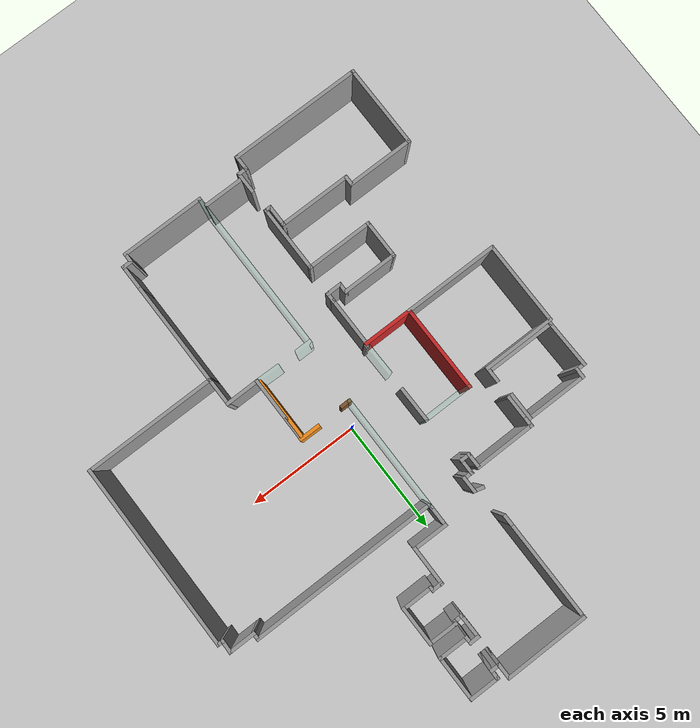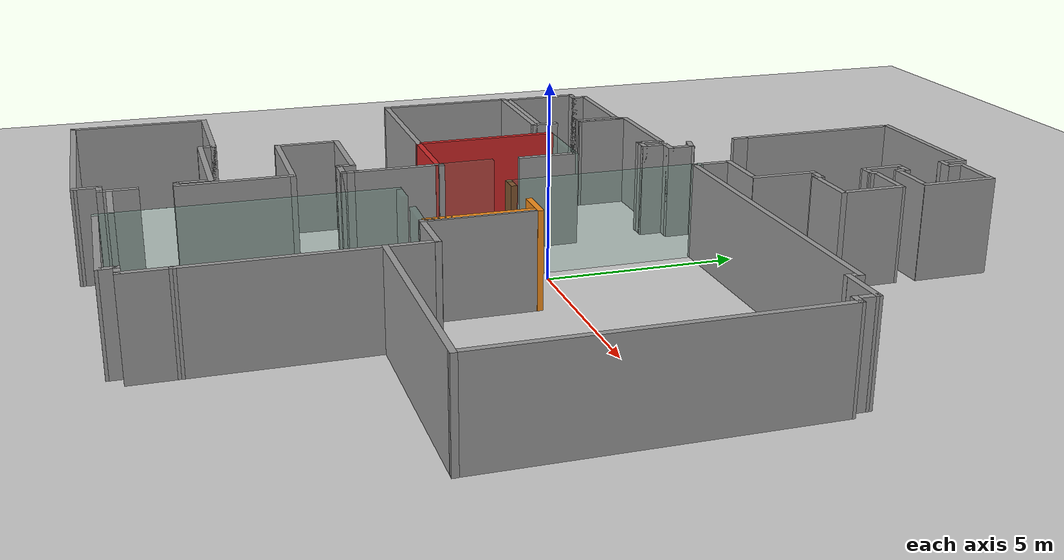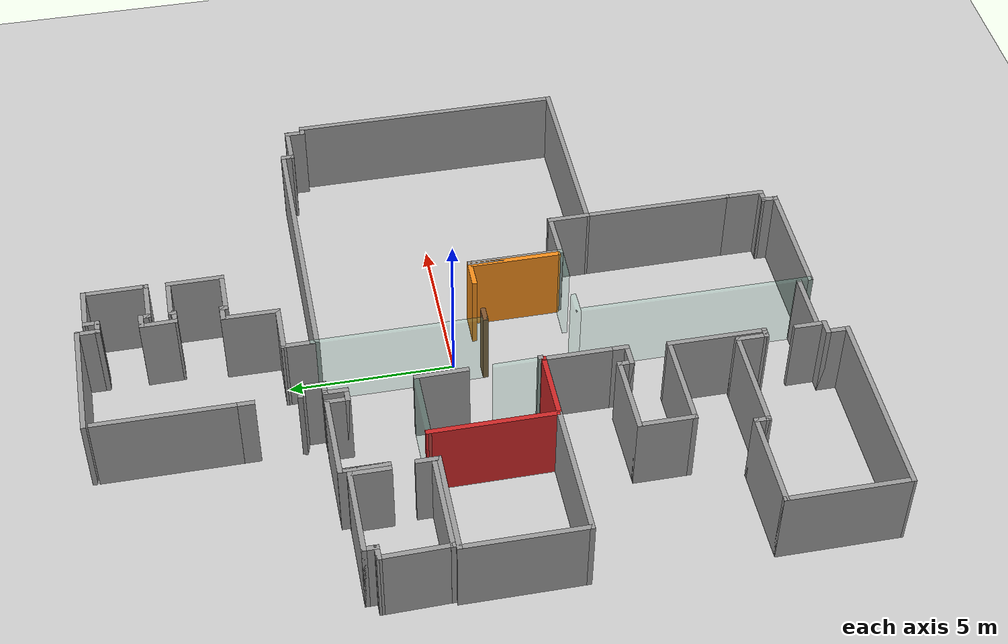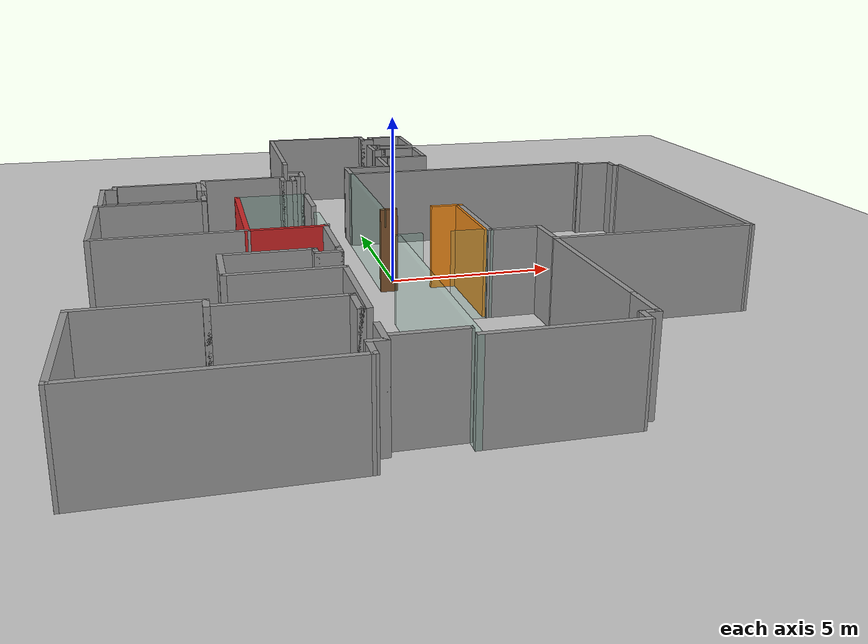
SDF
<sdf version="1.6">
 <world name="default">
  <model name="ground_plane">
   <static>1</static>
   <link name="link">
    <collision name="collision">
     <geometry><plane><normal>0 0 1</normal><size>100 100</size></plane></geometry>
     <surface><friction><ode><mu>100</mu><mu2>50</mu2></ode></friction></surface>
    </collision>
    <visual name="visual">
     <cast_shadows>0</cast_shadows>
     <geometry><plane><normal>0 0 1</normal><size>100 100</size></plane></geometry>
     <material>
      <script><uri>file://media/materials/scripts/gazebo.material</uri><name>Gazebo/Grey</name></script>
     </material>
    </visual>
   </link>
  </model>
  <model name="SS_office_try_2">
   <pose>0.153592 -0.122335 0 0 -0 0</pose>
   <link name="Wall_0">
    <collision name="Wall_0_Collision">
     <geometry><box><size>5.91251 0.15 2.5</size></box></geometry>
     <pose>0 0 1.25 0 -0 0</pose>
    </collision>
    <visual name="Wall_0_Visual">
     <pose>0 0 1.25 0 -0 0</pose>
     <geometry><box><size>5.91251 0.15 2.5</size></box></geometry>
     <material>
      <script><uri>file://media/materials/scripts/gazebo.material</uri><name>Gazebo/Grey</name></script>
      <ambient>1 1 1 1</ambient>
     </material>
     <meta><layer>0</layer></meta>
    </visual>
    <pose>-5.91425 -11.0474 0 0 -0 3.13893</pose>
   </link>
   <link name="Wall_1">
    <collision name="Wall_1_Collision">
     <geometry><box><size>3.75 0.15 2.5</size></box></geometry>
     <pose>0 0 1.25 0 -0 0</pose>
    </collision>
    <visual name="Wall_1_Visual">
     <pose>0 0 1.25 0 -0 0</pose>
     <geometry><box><size>3.75 0.15 2.5</size></box></geometry>
     <material>
      <script><uri>file://media/materials/scripts/gazebo.material</uri><name>Gazebo/Grey</name></script>
      <ambient>1 1 1 1</ambient>
     </material>
     <meta><layer>0</layer></meta>
    </visual>
    <pose>-8.79549 -9.23977 0 0 -0 1.5708</pose>
   </link>
   <link name="Wall_10">
    <collision name="Wall_10_Collision">
     <geometry><box><size>1.75 0.15 2.5</size></box></geometry>
     <pose>0 0 1.25 0 -0 0</pose>
    </collision>
    <visual name="Wall_10_Visual">
     <pose>0 0 1.25 0 -0 0</pose>
     <geometry><box><size>1.75 0.15 2.5</size></box></geometry>
     <material>
      <script><uri>file://media/materials/scripts/gazebo.material</uri><name>Gazebo/Grey</name></script>
      <ambient>1 1 1 1</ambient>
     </material>
     <meta><layer>0</layer></meta>
    </visual>
    <pose>-5.49549 -4.98977 0 0 -0 1.5708</pose>
   </link>
   <link name="Wall_100">
    <collision name="Wall_100_Collision">
     <geometry><box><size>0.379823 0.15 2.5</size></box></geometry>
     <pose>0 0 1.25 0 -0 0</pose>
    </collision>
    <visual name="Wall_100_Visual">
     <pose>0 0 1.25 0 -0 0</pose>
     <geometry><box><size>0.379823 0.15 2.5</size></box></geometry>
     <material>
      <script><uri>file://media/materials/scripts/gazebo.material</uri><name>Gazebo/Grey</name></script>
      <ambient>1 1 1 1</ambient>
     </material>
     <meta><layer>0</layer></meta>
    </visual>
    <pose>1.28072 9.07016 0 0 -0 1.63617</pose>
   </link>
   <link name="Wall_101">
    <collision name="Wall_101_Collision">
     <geometry><box><size>0.5 0.15 2.5</size></box></geometry>
     <pose>0 0 1.25 0 -0 0</pose>
    </collision>
    <visual name="Wall_101_Visual">
     <pose>0 0 1.25 0 -0 0</pose>
     <geometry><box><size>0.5 0.15 2.5</size></box></geometry>
     <material>
      <script><uri>file://media/materials/scripts/gazebo.material</uri><name>Gazebo/Grey</name></script>
      <ambient>1 1 1 1</ambient>
     </material>
     <meta><layer>0</layer></meta>
    </visual>
    <pose>1.10572 9.18501 0 0 -0 3.14159</pose>
   </link>
   <link name="Wall_102">
    <collision name="Wall_102_Collision">
     <geometry><box><size>1.12973 0.15 2.5</size></box></geometry>
     <pose>0 0 1.25 0 -0 0</pose>
    </collision>
    <visual name="Wall_102_Visual">
     <pose>0 0 1.25 0 -0 0</pose>
     <geometry><box><size>1.12973 0.15 2.5</size></box></geometry>
     <material>
      <script><uri>file://media/materials/scripts/gazebo.material</uri><name>Gazebo/Grey</name></script>
      <ambient>1 1 1 1</ambient>
     </material>
     <meta><layer>0</layer></meta>
    </visual>
    <pose>0.930715 8.69516 0 0 0 -1.55545</pose>
   </link>
   <link name="Wall_103">
    <collision name="Wall_103_Collision">
     <geometry><box><size>0.5 0.15 2.5</size></box></geometry>
     <pose>0 0 1.25 0 -0 0</pose>
    </collision>
    <visual name="Wall_103_Visual">
     <pose>0 0 1.25 0 -0 0</pose>
     <geometry><box><size>0.5 0.15 2.5</size></box></geometry>
     <material>
      <script><uri>file://media/materials/scripts/gazebo.material</uri><name>Gazebo/Grey</name></script>
      <ambient>1 1 1 1</ambient>
     </material>
     <meta><layer>0</layer></meta>
    </visual>
    <pose>1.11323 8.20531 0 0 -0 0</pose>
   </link>
   <link name="Wall_104">
    <collision name="Wall_104_Collision">
     <geometry><box><size>0.25 0.15 2.5</size></box></geometry>
     <pose>0 0 1.25 0 -0 0</pose>
    </collision>
    <visual name="Wall_104_Visual">
     <pose>0 0 1.25 0 -0 0</pose>
     <geometry><box><size>0.25 0.15 2.5</size></box></geometry>
     <material>
      <script><uri>file://media/materials/scripts/gazebo.material</uri><name>Gazebo/Grey</name></script>
      <ambient>1 1 1 1</ambient>
     </material>
     <meta><layer>0</layer></meta>
    </visual>
    <pose>1.28823 8.25531 0 0 -0 1.5708</pose>
   </link>
   <link name="Wall_105">
    <collision name="Wall_105_Collision">
     <geometry><box><size>1.3554 0.15 2.5</size></box></geometry>
     <pose>0 0 1.25 0 -0 0</pose>
    </collision>
    <visual name="Wall_105_Visual">
     <pose>0 0 1.25 0 -0 0</pose>
     <geometry><box><size>1.3554 0.15 2.5</size></box></geometry>
     <material>
      <script><uri>file://media/materials/scripts/gazebo.material</uri><name>Gazebo/Grey</name></script>
      <ambient>1 1 1 1</ambient>
     </material>
     <meta><layer>0</layer></meta>
    </visual>
    <pose>1.89089 8.29779 0 0 0 -0.012475</pose>
   </link>
   <link name="Wall_106">
    <collision name="Wall_106_Collision">
     <geometry><box><size>1.75 0.15 2.5</size></box></geometry>
     <pose>0 0 1.25 0 -0 0</pose>
    </collision>
    <visual name="Wall_106_Visual">
     <pose>0 0 1.25 0 -0 0</pose>
     <geometry><box><size>1.75 0.15 2.5</size></box></geometry>
     <material>
      <script><uri>file://media/materials/scripts/gazebo.material</uri><name>Gazebo/Grey</name></script>
      <ambient>1 1 1 1</ambient>
     </material>
     <meta><layer>0</layer></meta>
    </visual>
    <pose>2.49354 7.49027 0 0 0 -1.5708</pose>
   </link>
   <link name="Wall_107">
    <collision name="Wall_107_Collision">
     <geometry><box><size>1.45874 0.15 2.5</size></box></geometry>
     <pose>0 0 1.25 0 -0 0</pose>
    </collision>
    <visual name="Wall_107_Visual">
     <pose>0 0 1.25 0 -0 0</pose>
     <geometry><box><size>1.45874 0.15 2.5</size></box></geometry>
     <material>
      <script><uri>file://media/materials/scripts/gazebo.material</uri><name>Gazebo/Grey</name></script>
      <ambient>1 1 1 1</ambient>
     </material>
     <meta><layer>0</layer></meta>
    </visual>
    <pose>1.84486 6.69027 0 0 -0 3.14159</pose>
   </link>
   <link name="Wall_108">
    <collision name="Wall_108_Collision">
     <geometry><box><size>0.266919 0.15 2.5</size></box></geometry>
     <pose>0 0 1.25 0 -0 0</pose>
    </collision>
    <visual name="Wall_108_Visual">
     <pose>0 0 1.25 0 -0 0</pose>
     <geometry><box><size>0.266919 0.15 2.5</size></box></geometry>
     <material>
      <script><uri>file://media/materials/scripts/gazebo.material</uri><name>Gazebo/Grey</name></script>
      <ambient>1 1 1 1</ambient>
     </material>
     <meta><layer>0</layer></meta>
    </visual>
    <pose>1.19801 6.75625 0 0 -0 1.5708</pose>
   </link>
   <link name="Wall_109">
    <collision name="Wall_109_Collision">
     <geometry><box><size>0.552631 0.15 2.5</size></box></geometry>
     <pose>0 0 1.25 0 -0 0</pose>
    </collision>
    <visual name="Wall_109_Visual">
     <pose>0 0 1.25 0 -0 0</pose>
     <geometry><box><size>0.552631 0.15 2.5</size></box></geometry>
     <material>
      <script><uri>file://media/materials/scripts/gazebo.material</uri><name>Gazebo/Grey</name></script>
      <ambient>1 1 1 1</ambient>
     </material>
     <meta><layer>0</layer></meta>
    </visual>
    <pose>1.00421 6.80719 0 0 -0 3.14159</pose>
   </link>
   <link name="Wall_11">
    <collision name="Wall_11_Collision">
     <geometry><box><size>2.5 0.15 2.5</size></box></geometry>
     <pose>0 0 1.25 0 -0 0</pose>
    </collision>
    <visual name="Wall_11_Visual">
     <pose>0 0 1.25 0 -0 0</pose>
     <geometry><box><size>2.5 0.15 2.5</size></box></geometry>
     <material>
      <script><uri>file://media/materials/scripts/gazebo.material</uri><name>Gazebo/Grey</name></script>
      <ambient>1 1 1 1</ambient>
     </material>
     <meta><layer>0</layer></meta>
    </visual>
    <pose>-4.32049 -4.18977 0 0 -0 0</pose>
   </link>
   <link name="Wall_110">
    <collision name="Wall_110_Collision">
     <geometry><box><size>1.75942 0.15 2.5</size></box></geometry>
     <pose>0 0 1.25 0 -0 0</pose>
    </collision>
    <visual name="Wall_110_Visual">
     <pose>0 0 1.25 0 -0 0</pose>
     <geometry><box><size>1.75942 0.15 2.5</size></box></geometry>
     <material>
      <script><uri>file://media/materials/scripts/gazebo.material</uri><name>Gazebo/Grey</name></script>
      <ambient>1 1 1 1</ambient>
     </material>
     <meta><layer>0</layer></meta>
    </visual>
    <pose>0.791618 6.01001 0 0 0 -1.57547</pose>
   </link>
   <link name="Wall_111">
    <collision name="Wall_111_Collision">
     <geometry><box><size>1.59211 0.15 2.5</size></box></geometry>
     <pose>0 0 1.25 0 -0 0</pose>
    </collision>
    <visual name="Wall_111_Visual">
     <pose>0 0 1.25 0 -0 0</pose>
     <geometry><box><size>1.59211 0.15 2.5</size></box></geometry>
     <material>
      <script><uri>file://media/materials/scripts/gazebo.material</uri><name>Gazebo/Grey</name></script>
      <ambient>1 1 1 1</ambient>
     </material>
     <meta><layer>0</layer></meta>
    </visual>
    <pose>0.059287 5.20155 0 0 -0 3.13638</pose>
   </link>
   <link name="Wall_113">
    <collision name="Wall_113_Collision">
     <geometry><box><size>1 0.15 2.5</size></box></geometry>
     <pose>0 0 1.25 0 -0 0</pose>
    </collision>
    <visual name="Wall_113_Visual">
     <pose>0 0 1.25 0 -0 0</pose>
     <geometry><box><size>1 0.15 2.5</size></box></geometry>
     <material>
      <script><uri>file://media/materials/scripts/gazebo.material</uri><name>Gazebo/Grey</name></script>
      <ambient>1 1 1 1</ambient>
     </material>
     <meta><layer>0</layer></meta>
    </visual>
    <pose>-0.661766 4.78031 0 0 0 -1.5708</pose>
   </link>
   <link name="Wall_115">
    <collision name="Wall_115_Collision">
     <geometry><box><size>5.25 0.15 2.5</size></box></geometry>
     <pose>0 0 1.25 0 -0 0</pose>
    </collision>
    <visual name="Wall_115_Visual">
     <pose>0 0 1.25 0 -0 0</pose>
     <geometry><box><size>5.25 0.15 2.5</size></box></geometry>
     <material>
      <script><uri>file://media/materials/scripts/gazebo.material</uri><name>Gazebo/Grey</name></script>
      <ambient>0.435 0.796 0.675 1</ambient>
      <diffuse>0.7 0.7 0.7 1</diffuse>
      <specular>0.01 0.01 0.01 1</specular>
      <emissive>0 0 0 1</emissive>
     </material>
     <meta><layer>0</layer></meta>
     <transparency>0.8</transparency>
    </visual>
    <pose>-0.661766 1.80531 0 0 0 -1.5708</pose>
   </link>
   <link name="Wall_116">
    <collision name="Wall_116_Collision">
     <geometry><box><size>0.5 0.15 2.5</size></box></geometry>
     <pose>0 0 1.25 0 -0 0</pose>
    </collision>
    <visual name="Wall_116_Visual">
     <pose>0 0 1.25 0 -0 0</pose>
     <geometry><box><size>0.5 0.15 2.5</size></box></geometry>
     <material>
      <script><uri>file://media/materials/scripts/gazebo.material</uri><name>Gazebo/Brown</name></script>
      <ambient>1 1 1 1</ambient>
     </material>
     <meta><layer>0</layer></meta>
    </visual>
    <pose>-0.486766 -0.744691 0 0 -0 0</pose>
   </link>
   <link name="Wall_118">
    <collision name="Wall_118_Collision">
     <geometry><box><size>0.961189 0.15 2.5</size></box></geometry>
     <pose>0 0 1.25 0 -0 0</pose>
    </collision>
    <visual name="Wall_118_Visual">
     <pose>0 0 1.25 0 -0 0</pose>
     <geometry><box><size>0.961189 0.15 2.5</size></box></geometry>
     <material>
      <script><uri>file://media/materials/scripts/gazebo.material</uri><name>Gazebo/Orange</name></script>
      <ambient>1 1 1 1</ambient>
     </material>
     <meta><layer>0</layer></meta>
    </visual>
    <pose>1.28357 -0.707118 0 0 0 -0.008354</pose>
   </link>
   <link name="Wall_119">
    <collision name="Wall_119_Collision">
     <geometry><box><size>2.92618 0.15 2.5</size></box></geometry>
     <pose>0 0 1.25 0 -0 0</pose>
    </collision>
    <visual name="Wall_119_Visual">
     <pose>0 0 1.25 0 -0 0</pose>
     <geometry><box><size>2.92618 0.15 2.5</size></box></geometry>
     <material>
      <script><uri>file://media/materials/scripts/gazebo.material</uri><name>Gazebo/Grey</name></script>
      <ambient>1 1 1 1</ambient>
     </material>
     <meta><layer>0</layer></meta>
    </visual>
    <pose>1.68237 -2.11215 0 0 0 -1.5708</pose>
   </link>
   <link name="Wall_12">
    <collision name="Wall_12_Collision">
     <geometry><box><size>0.5 0.15 2.5</size></box></geometry>
     <pose>0 0 1.25 0 -0 0</pose>
    </collision>
    <visual name="Wall_12_Visual">
     <pose>0 0 1.25 0 -0 0</pose>
     <geometry><box><size>0.5 0.15 2.5</size></box></geometry>
     <material>
      <script><uri>file://media/materials/scripts/gazebo.material</uri><name>Gazebo/Grey</name></script>
      <ambient>1 1 1 1</ambient>
     </material>
     <meta><layer>0</layer></meta>
    </visual>
    <pose>-3.14549 -4.36477 0 0 0 -1.5708</pose>
   </link>
   <link name="Wall_120">
    <collision name="Wall_120_Collision">
     <geometry><box><size>1.55423 0.15 2.5</size></box></geometry>
     <pose>0 0 1.25 0 -0 0</pose>
    </collision>
    <visual name="Wall_120_Visual">
     <pose>0 0 1.25 0 -0 0</pose>
     <geometry><box><size>1.55423 0.15 2.5</size></box></geometry>
     <material>
      <script><uri>file://media/materials/scripts/gazebo.material</uri><name>Gazebo/Grey</name></script>
      <ambient>1 1 1 1</ambient>
     </material>
     <meta><layer>0</layer></meta>
    </visual>
    <pose>2.39125 -3.50363 0 0 -0 0.004826</pose>
   </link>
   <link name="Wall_121">
    <collision name="Wall_121_Collision">
     <geometry><box><size>1.31028 0.15 2.5</size></box></geometry>
     <pose>0 0 1.25 0 -0 0</pose>
    </collision>
    <visual name="Wall_121_Visual">
     <pose>0 0 1.25 0 -0 0</pose>
     <geometry><box><size>1.31028 0.15 2.5</size></box></geometry>
     <material>
      <script><uri>file://media/materials/scripts/gazebo.material</uri><name>Gazebo/Grey</name></script>
      <ambient>1 1 1 1</ambient>
     </material>
     <meta><layer>0</layer></meta>
    </visual>
    <pose>3.08997 -4.0736 0 0 0 -1.56496</pose>
   </link>
   <link name="Wall_122">
    <collision name="Wall_122_Collision">
     <geometry><box><size>5.85233 0.15 2.5</size></box></geometry>
     <pose>0 0 1.25 0 -0 0</pose>
    </collision>
    <visual name="Wall_122_Visual">
     <pose>0 0 1.25 0 -0 0</pose>
     <geometry><box><size>5.85233 0.15 2.5</size></box></geometry>
     <material>
      <script><uri>file://media/materials/scripts/gazebo.material</uri><name>Gazebo/Grey</name></script>
      <ambient>1 1 1 1</ambient>
     </material>
     <meta><layer>0</layer></meta>
    </visual>
    <pose>5.94452 -4.65373 0 0 -0 0</pose>
   </link>
   <link name="Wall_123">
    <collision name="Wall_123_Collision">
     <geometry><box><size>8.28775 0.15 2.5</size></box></geometry>
     <pose>0 0 1.25 0 -0 0</pose>
    </collision>
    <visual name="Wall_123_Visual">
     <pose>0 0 1.25 0 -0 0</pose>
     <geometry><box><size>8.28775 0.15 2.5</size></box></geometry>
     <material>
      <script><uri>file://media/materials/scripts/gazebo.material</uri><name>Gazebo/Grey</name></script>
      <ambient>1 1 1 1</ambient>
     </material>
     <meta><layer>0</layer></meta>
    </visual>
    <pose>8.78622 -0.584854 0 0 -0 1.57126</pose>
   </link>
   <link name="Wall_124">
    <collision name="Wall_124_Collision">
     <geometry><box><size>0.352219 0.15 2.5</size></box></geometry>
     <pose>0 0 1.25 0 -0 0</pose>
    </collision>
    <visual name="Wall_124_Visual">
     <pose>0 0 1.25 0 -0 0</pose>
     <geometry><box><size>0.352219 0.15 2.5</size></box></geometry>
     <material>
      <script><uri>file://media/materials/scripts/gazebo.material</uri><name>Gazebo/Grey</name></script>
      <ambient>1 1 1 1</ambient>
     </material>
     <meta><layer>0</layer></meta>
    </visual>
    <pose>8.68323 3.48971 0 0 -0 3.12285</pose>
   </link>
   <link name="Wall_125">
    <collision name="Wall_125_Collision">
     <geometry><box><size>0.636677 0.15 2.5</size></box></geometry>
     <pose>0 0 1.25 0 -0 0</pose>
    </collision>
    <visual name="Wall_125_Visual">
     <pose>0 0 1.25 0 -0 0</pose>
     <geometry><box><size>0.636677 0.15 2.5</size></box></geometry>
     <material>
      <script><uri>file://media/materials/scripts/gazebo.material</uri><name>Gazebo/Grey</name></script>
      <ambient>1 1 1 1</ambient>
     </material>
     <meta><layer>0</layer></meta>
    </visual>
    <pose>8.58585 3.73103 0 0 -0 1.53995</pose>
   </link>
   <link name="Wall_126">
    <collision name="Wall_126_Collision">
     <geometry><box><size>1.25 0.15 2.5</size></box></geometry>
     <pose>0 0 1.25 0 -0 0</pose>
    </collision>
    <visual name="Wall_126_Visual">
     <pose>0 0 1.25 0 -0 0</pose>
     <geometry><box><size>1.25 0.15 2.5</size></box></geometry>
     <material>
      <script><uri>file://media/materials/scripts/gazebo.material</uri><name>Gazebo/Grey</name></script>
      <ambient>1 1 1 1</ambient>
     </material>
     <meta><layer>0</layer></meta>
    </visual>
    <pose>8.04336 3.97426 0 0 -0 3.14159</pose>
   </link>
   <link name="Wall_127">
    <collision name="Wall_127_Collision">
     <geometry><box><size>0.411283 0.15 2.5</size></box></geometry>
     <pose>0 0 1.25 0 -0 0</pose>
    </collision>
    <visual name="Wall_127_Visual">
     <pose>0 0 1.25 0 -0 0</pose>
     <geometry><box><size>0.411283 0.15 2.5</size></box></geometry>
     <material>
      <script><uri>file://media/materials/scripts/gazebo.material</uri><name>Gazebo/Grey</name></script>
      <ambient>1 1 1 1</ambient>
     </material>
     <meta><layer>0</layer></meta>
    </visual>
    <pose>7.49234 4.1011 0 0 -0 1.57861</pose>
   </link>
   <link name="Wall_128">
    <collision name="Wall_128_Collision">
     <geometry><box><size>8.25 0.15 2.5</size></box></geometry>
     <pose>0 0 1.25 0 -0 0</pose>
    </collision>
    <visual name="Wall_128_Visual">
     <pose>0 0 1.25 0 -0 0</pose>
     <geometry><box><size>8.25 0.15 2.5</size></box></geometry>
     <material>
      <script><uri>file://media/materials/scripts/gazebo.material</uri><name>Gazebo/Grey</name></script>
      <ambient>1 1 1 1</ambient>
     </material>
     <meta><layer>0</layer></meta>
    </visual>
    <pose>3.43753 4.23174 0 0 -0 3.14159</pose>
   </link>
   <link name="Wall_13">
    <collision name="Wall_13_Collision">
     <geometry><box><size>0.75 0.15 2.5</size></box></geometry>
     <pose>0 0 1.25 0 -0 0</pose>
    </collision>
    <visual name="Wall_13_Visual">
     <pose>0 0 1.25 0 -0 0</pose>
     <geometry><box><size>0.75 0.15 2.5</size></box></geometry>
     <material>
      <script><uri>file://media/materials/scripts/gazebo.material</uri><name>Gazebo/Grey</name></script>
      <ambient>1 1 1 1</ambient>
     </material>
     <meta><layer>0</layer></meta>
    </visual>
    <pose>-2.84549 -4.53977 0 0 -0 0</pose>
   </link>
   <link name="Wall_134">
    <collision name="Wall_134_Collision">
     <geometry><box><size>1.13806 0.15 2.5</size></box></geometry>
     <pose>0 0 1.25 0 -0 0</pose>
    </collision>
    <visual name="Wall_134_Visual">
     <pose>0 0 1.25 0 -0 0</pose>
     <geometry><box><size>1.13806 0.15 2.5</size></box></geometry>
     <material>
      <script><uri>file://media/materials/scripts/gazebo.material</uri><name>Gazebo/Grey</name></script>
      <ambient>0.435 0.796 0.675 1</ambient>
      <diffuse>0.7 0.7 0.7 1</diffuse>
      <specular>0.01 0.01 0.01 1</specular>
      <emissive>0 0 0 1</emissive>
     </material>
     <meta><layer>0</layer></meta>
     <transparency>0.8</transparency>
    </visual>
    <pose>1.19527 -3.49491 0 0 0 -0.024517</pose>
   </link>
   <link name="Wall_136">
    <collision name="Wall_136_Collision">
     <geometry><box><size>2.75 0.15 2.5</size></box></geometry>
     <pose>0 0 1.25 0 -0 0</pose>
    </collision>
    <visual name="Wall_136_Visual">
     <pose>0 0 1.25 0 -0 0</pose>
     <geometry><box><size>2.75 0.15 2.5</size></box></geometry>
     <material>
      <script><uri>file://media/materials/scripts/gazebo.material</uri><name>Gazebo/Orange</name></script>
      <ambient>1 1 1 1</ambient>
     </material>
     <meta><layer>0</layer></meta>
    </visual>
    <pose>1.60652 -2.11221 0 0 0 -1.5708</pose>
   </link>
   <link name="Wall_138">
    <collision name="Wall_138_Collision">
     <geometry><box><size>0.75 0.15 2.5</size></box></geometry>
     <pose>0 0 1.25 0 -0 0</pose>
    </collision>
    <visual name="Wall_138_Visual">
     <pose>0 0 1.25 0 -0 0</pose>
     <geometry><box><size>0.75 0.15 2.5</size></box></geometry>
     <material>
      <script><uri>file://media/materials/scripts/gazebo.material</uri><name>Gazebo/Grey</name></script>
      <ambient>0.435 0.796 0.675 1</ambient>
      <diffuse>0.7 0.7 0.7 1</diffuse>
      <specular>0.01 0.01 0.01 1</specular>
      <emissive>0 0 0 1</emissive>
     </material>
     <meta><layer>0</layer></meta>
     <transparency>0.8</transparency>
    </visual>
    <pose>-0.548157 -3.49201 0 0 -0 3.14159</pose>
   </link>
   <link name="Wall_139">
    <collision name="Wall_139_Collision">
     <geometry><box><size>7.25 0.15 2.5</size></box></geometry>
     <pose>0 0 1.25 0 -0 0</pose>
    </collision>
    <visual name="Wall_139_Visual">
     <pose>0 0 1.25 0 -0 0</pose>
     <geometry><box><size>7.25 0.15 2.5</size></box></geometry>
     <material>
      <script><uri>file://media/materials/scripts/gazebo.material</uri><name>Gazebo/Grey</name></script>
      <ambient>0.435 0.796 0.675 1</ambient>
      <diffuse>0.7 0.7 0.7 1</diffuse>
      <specular>0.01 0.01 0.01 1</specular>
      <emissive>0 0 0 1</emissive>
     </material>
     <meta><layer>0</layer></meta>
     <transparency>0.8</transparency>
    </visual>
    <pose>-0.848157 -7.04201 0 0 0 -1.5708</pose>
   </link>
   <link name="Wall_141">
    <collision name="Wall_141_Collision">
     <geometry><box><size>3.75 0.15 2.5</size></box></geometry>
     <pose>0 0 1.25 0 -0 0</pose>
    </collision>
    <visual name="Wall_141_Visual">
     <pose>0 0 1.25 0 -0 0</pose>
     <geometry><box><size>3.75 0.15 2.5</size></box></geometry>
     <material>
      <script><uri>file://media/materials/scripts/gazebo.material</uri><name>Gazebo/Grey</name></script>
      <ambient>1 1 1 1</ambient>
     </material>
     <meta><layer>0</layer></meta>
    </visual>
    <pose>0.951844 -10.592 0 0 -0 0</pose>
   </link>
   <link name="Wall_142">
    <collision name="Wall_142_Collision">
     <geometry><box><size>0.520329 0.15 2.5</size></box></geometry>
     <pose>0 0 1.25 0 -0 0</pose>
    </collision>
    <visual name="Wall_142_Visual">
     <pose>0 0 1.25 0 -0 0</pose>
     <geometry><box><size>0.520329 0.15 2.5</size></box></geometry>
     <material>
      <script><uri>file://media/materials/scripts/gazebo.material</uri><name>Gazebo/Grey</name></script>
      <ambient>1 1 1 1</ambient>
     </material>
     <meta><layer>0</layer></meta>
    </visual>
    <pose>2.75354 -10.4068 0 0 -0 1.56165</pose>
   </link>
   <link name="Wall_145">
    <collision name="Wall_145_Collision">
     <geometry><box><size>0.5 0.15 2.5</size></box></geometry>
     <pose>0 0 1.25 0 -0 0</pose>
    </collision>
    <visual name="Wall_145_Visual">
     <pose>0 0 1.25 0 -0 0</pose>
     <geometry><box><size>0.5 0.15 2.5</size></box></geometry>
     <material>
      <script><uri>file://media/materials/scripts/gazebo.material</uri><name>Gazebo/Grey</name></script>
      <ambient>1 1 1 1</ambient>
     </material>
     <meta><layer>0</layer></meta>
    </visual>
    <pose>2.93023 -10.2217 0 0 -0 0</pose>
   </link>
   <link name="Wall_146">
    <collision name="Wall_146_Collision">
     <geometry><box><size>1.25 0.15 2.5</size></box></geometry>
     <pose>0 0 1.25 0 -0 0</pose>
    </collision>
    <visual name="Wall_146_Visual">
     <pose>0 0 1.25 0 -0 0</pose>
     <geometry><box><size>1.25 0.15 2.5</size></box></geometry>
     <material>
      <script><uri>file://media/materials/scripts/gazebo.material</uri><name>Gazebo/Grey</name></script>
      <ambient>1 1 1 1</ambient>
     </material>
     <meta><layer>0</layer></meta>
    </visual>
    <pose>3.10523 -9.67168 0 0 -0 1.5708</pose>
   </link>
   <link name="Wall_147">
    <collision name="Wall_147_Collision">
     <geometry><box><size>4.61797 0.15 2.5</size></box></geometry>
     <pose>0 0 1.25 0 -0 0</pose>
    </collision>
    <visual name="Wall_147_Visual">
     <pose>0 0 1.25 0 -0 0</pose>
     <geometry><box><size>4.61797 0.15 2.5</size></box></geometry>
     <material>
      <script><uri>file://media/materials/scripts/gazebo.material</uri><name>Gazebo/Grey</name></script>
      <ambient>1 1 1 1</ambient>
     </material>
     <meta><layer>0</layer></meta>
    </visual>
    <pose>3.0993 -6.88771 0 0 -0 1.57345</pose>
   </link>
   <link name="Wall_149">
    <collision name="Wall_149_Collision">
     <geometry><box><size>1.75 0.15 2.5</size></box></geometry>
     <pose>0 0 1.25 0 -0 0</pose>
    </collision>
    <visual name="Wall_149_Visual">
     <pose>0 0 1.25 0 -0 0</pose>
     <geometry><box><size>1.75 0.15 2.5</size></box></geometry>
     <material>
      <script><uri>file://media/materials/scripts/gazebo.material</uri><name>Gazebo/Grey</name></script>
      <ambient>1 1 1 1</ambient>
     </material>
     <meta><layer>0</layer></meta>
    </visual>
    <pose>-1.74079 -10.2333 0 0 -0 3.14159</pose>
   </link>
   <link name="Wall_151">
    <collision name="Wall_151_Collision">
     <geometry><box><size>1 0.15 2.5</size></box></geometry>
     <pose>0 0 1.25 0 -0 0</pose>
    </collision>
    <visual name="Wall_151_Visual">
     <pose>0 0 1.25 0 -0 0</pose>
     <geometry><box><size>1 0.15 2.5</size></box></geometry>
     <material>
      <script><uri>file://media/materials/scripts/gazebo.material</uri><name>Gazebo/Grey</name></script>
      <ambient>1 1 1 1</ambient>
     </material>
     <meta><layer>0</layer></meta>
    </visual>
    <pose>-2.68301 -10.0301 0 0 0 -1.5708</pose>
   </link>
   <link name="Wall_152">
    <collision name="Wall_152_Collision">
     <geometry><box><size>0.5 0.15 2.5</size></box></geometry>
     <pose>0 0 1.25 0 -0 0</pose>
    </collision>
    <visual name="Wall_152_Visual">
     <pose>0 0 1.25 0 -0 0</pose>
     <geometry><box><size>0.5 0.15 2.5</size></box></geometry>
     <material>
      <script><uri>file://media/materials/scripts/gazebo.material</uri><name>Gazebo/Grey</name></script>
      <ambient>1 1 1 1</ambient>
     </material>
     <meta><layer>0</layer></meta>
    </visual>
    <pose>-2.85801 -10.4551 0 0 -0 3.14159</pose>
   </link>
   <link name="Wall_153">
    <collision name="Wall_153_Collision">
     <geometry><box><size>0.75 0.15 2.5</size></box></geometry>
     <pose>0 0 1.25 0 -0 0</pose>
    </collision>
    <visual name="Wall_153_Visual">
     <pose>0 0 1.25 0 -0 0</pose>
     <geometry><box><size>0.75 0.15 2.5</size></box></geometry>
     <material>
      <script><uri>file://media/materials/scripts/gazebo.material</uri><name>Gazebo/Grey</name></script>
      <ambient>1 1 1 1</ambient>
     </material>
     <meta><layer>0</layer></meta>
    </visual>
    <pose>-3.03301 -10.7551 0 0 0 -1.5708</pose>
   </link>
   <link name="Wall_155">
    <collision name="Wall_155_Collision">
     <geometry><box><size>1.62091 0.15 2.5</size></box></geometry>
     <pose>0 0 1.25 0 -0 0</pose>
    </collision>
    <visual name="Wall_155_Visual">
     <pose>0 0 1.25 0 -0 0</pose>
     <geometry><box><size>1.62091 0.15 2.5</size></box></geometry>
     <material>
      <script><uri>file://media/materials/scripts/gazebo.material</uri><name>Gazebo/Grey</name></script>
      <ambient>1 1 1 1</ambient>
     </material>
     <meta><layer>0</layer></meta>
    </visual>
    <pose>-2.55275 0.898318 0 0 -0 1.57861</pose>
   </link>
   <link name="Wall_2">
    <collision name="Wall_2_Collision">
     <geometry><box><size>3 0.15 2.5</size></box></geometry>
     <pose>0 0 1.25 0 -0 0</pose>
    </collision>
    <visual name="Wall_2_Visual">
     <pose>0 0 1.25 0 -0 0</pose>
     <geometry><box><size>3 0.15 2.5</size></box></geometry>
     <material>
      <script><uri>file://media/materials/scripts/gazebo.material</uri><name>Gazebo/Grey</name></script>
      <ambient>1 1 1 1</ambient>
     </material>
     <meta><layer>0</layer></meta>
    </visual>
    <pose>-7.37049 -7.43977 0 0 -0 0</pose>
   </link>
   <link name="Wall_28">
    <collision name="Wall_28_Collision">
     <geometry><box><size>0.15 0.15 2.5</size></box></geometry>
     <pose>0 0 1.25 0 -0 0</pose>
    </collision>
    <visual name="Wall_28_Visual">
     <pose>0 0 1.25 0 -0 0</pose>
     <geometry><box><size>0.15 0.15 2.5</size></box></geometry>
     <material>
      <script><uri>file://media/materials/scripts/gazebo.material</uri><name>Gazebo/Grey</name></script>
      <ambient>1 1 1 1</ambient>
     </material>
     <meta><layer>0</layer></meta>
    </visual>
    <pose>-2.48781 -2.00969 0 0 -0 0</pose>
   </link>
   <link name="Wall_3">
    <collision name="Wall_3_Collision">
     <geometry><box><size>0.5 0.15 2.5</size></box></geometry>
     <pose>0 0 1.25 0 -0 0</pose>
    </collision>
    <visual name="Wall_3_Visual">
     <pose>0 0 1.25 0 -0 0</pose>
     <geometry><box><size>0.5 0.15 2.5</size></box></geometry>
     <material>
      <script><uri>file://media/materials/scripts/gazebo.material</uri><name>Gazebo/Grey</name></script>
      <ambient>1 1 1 1</ambient>
     </material>
     <meta><layer>0</layer></meta>
    </visual>
    <pose>-5.94549 -7.61477 0 0 0 -1.5708</pose>
   </link>
   <link name="Wall_39">
    <collision name="Wall_39_Collision">
     <geometry><box><size>0.5 0.15 2.5</size></box></geometry>
     <pose>0 0 1.25 0 -0 0</pose>
    </collision>
    <visual name="Wall_39_Visual">
     <pose>0 0 1.25 0 -0 0</pose>
     <geometry><box><size>0.5 0.15 2.5</size></box></geometry>
     <material>
      <script><uri>file://media/materials/scripts/gazebo.material</uri><name>Gazebo/Grey</name></script>
      <ambient>1 1 1 1</ambient>
     </material>
     <meta><layer>0</layer></meta>
    </visual>
    <pose>-2.54549 -4.36477 0 0 -0 1.5708</pose>
   </link>
   <link name="Wall_4">
    <collision name="Wall_4_Collision">
     <geometry><box><size>3.25 0.15 2.5</size></box></geometry>
     <pose>0 0 1.25 0 -0 0</pose>
    </collision>
    <visual name="Wall_4_Visual">
     <pose>0 0 1.25 0 -0 0</pose>
     <geometry><box><size>3.25 0.15 2.5</size></box></geometry>
     <material>
      <script><uri>file://media/materials/scripts/gazebo.material</uri><name>Gazebo/Grey</name></script>
      <ambient>1 1 1 1</ambient>
     </material>
     <meta><layer>0</layer></meta>
    </visual>
    <pose>-4.39549 -7.78977 0 0 -0 0</pose>
   </link>
   <link name="Wall_40">
    <collision name="Wall_40_Collision">
     <geometry><box><size>2.25 0.15 2.5</size></box></geometry>
     <pose>0 0 1.25 0 -0 0</pose>
    </collision>
    <visual name="Wall_40_Visual">
     <pose>0 0 1.25 0 -0 0</pose>
     <geometry><box><size>2.25 0.15 2.5</size></box></geometry>
     <material>
      <script><uri>file://media/materials/scripts/gazebo.material</uri><name>Gazebo/Grey</name></script>
      <ambient>1 1 1 1</ambient>
     </material>
     <meta><layer>0</layer></meta>
    </visual>
    <pose>-2.54549 -3.13977 0 0 -0 1.5708</pose>
   </link>
   <link name="Wall_42">
    <collision name="Wall_42_Collision">
     <geometry><box><size>1.56365 0.15 2.5</size></box></geometry>
     <pose>0 0 1.25 0 -0 0</pose>
    </collision>
    <visual name="Wall_42_Visual">
     <pose>0 0 1.25 0 -0 0</pose>
     <geometry><box><size>1.56365 0.15 2.5</size></box></geometry>
     <material>
      <script><uri>file://media/materials/scripts/gazebo.material</uri><name>Gazebo/Grey</name></script>
      <ambient>0.435 0.796 0.675 1</ambient>
      <diffuse>0.7 0.7 0.7 1</diffuse>
      <specular>0.01 0.01 0.01 1</specular>
      <emissive>0 0 0 1</emissive>
     </material>
     <meta><layer>0</layer></meta>
     <transparency>0.8</transparency>
    </visual>
    <pose>-2.55627 -1.38303 0 0 0 -1.55555</pose>
   </link>
   <link name="Wall_43">
    <collision name="Wall_43_Collision">
     <geometry><box><size>2.25 0.15 2.5</size></box></geometry>
     <pose>0 0 1.25 0 -0 0</pose>
    </collision>
    <visual name="Wall_43_Visual">
     <pose>0 0 1.25 0 -0 0</pose>
     <geometry><box><size>2.25 0.15 2.5</size></box></geometry>
     <material>
      <script><uri>file://media/materials/scripts/gazebo.material</uri><name>Gazebo/Red</name></script>
      <ambient>1 1 1 1</ambient>
     </material>
     <meta><layer>0</layer></meta>
    </visual>
    <pose>-3.59549 -2.08977 0 0 -0 3.14159</pose>
   </link>
   <link name="Wall_45">
    <collision name="Wall_45_Collision">
     <geometry><box><size>3.88655 0.15 2.5</size></box></geometry>
     <pose>0 0 1.25 0 -0 0</pose>
    </collision>
    <visual name="Wall_45_Visual">
     <pose>0 0 1.25 0 -0 0</pose>
     <geometry><box><size>3.88655 0.15 2.5</size></box></geometry>
     <material>
      <script><uri>file://media/materials/scripts/gazebo.material</uri><name>Gazebo/Red</name></script>
      <ambient>1 1 1 1</ambient>
     </material>
     <meta><layer>0</layer></meta>
    </visual>
    <pose>-4.65199 -0.221511 0 0 -0 1.57428</pose>
   </link>
   <link name="Wall_47">
    <collision name="Wall_47_Collision">
     <geometry><box><size>2.25 0.15 2.5</size></box></geometry>
     <pose>0 0 1.25 0 -0 0</pose>
    </collision>
    <visual name="Wall_47_Visual">
     <pose>0 0 1.25 0 -0 0</pose>
     <geometry><box><size>2.25 0.15 2.5</size></box></geometry>
     <material>
      <script><uri>file://media/materials/scripts/gazebo.material</uri><name>Gazebo/Grey</name></script>
      <ambient>0.435 0.796 0.675 1</ambient>
      <diffuse>0.7 0.7 0.7 1</diffuse>
      <specular>0.01 0.01 0.01 1</specular>
      <emissive>0 0 0 1</emissive>
     </material>
     <meta><layer>0</layer></meta>
     <transparency>0.8</transparency>
    </visual>
    <pose>-3.6085 1.63375 0 0 -0 0</pose>
   </link>
   <link name="Wall_49">
    <collision name="Wall_49_Collision">
     <geometry><box><size>4.25 0.15 2.5</size></box></geometry>
     <pose>0 0 1.25 0 -0 0</pose>
    </collision>
    <visual name="Wall_49_Visual">
     <pose>0 0 1.25 0 -0 0</pose>
     <geometry><box><size>4.25 0.15 2.5</size></box></geometry>
     <material>
      <script><uri>file://media/materials/scripts/gazebo.material</uri><name>Gazebo/Grey</name></script>
      <ambient>1 1 1 1</ambient>
     </material>
     <meta><layer>0</layer></meta>
    </visual>
    <pose>-6.69549 -2.08977 0 0 -0 3.14159</pose>
   </link>
   <link name="Wall_5">
    <collision name="Wall_5_Collision">
     <geometry><box><size>1 0.15 2.5</size></box></geometry>
     <pose>0 0 1.25 0 -0 0</pose>
    </collision>
    <visual name="Wall_5_Visual">
     <pose>0 0 1.25 0 -0 0</pose>
     <geometry><box><size>1 0.15 2.5</size></box></geometry>
     <material>
      <script><uri>file://media/materials/scripts/gazebo.material</uri><name>Gazebo/Grey</name></script>
      <ambient>1 1 1 1</ambient>
     </material>
     <meta><layer>0</layer></meta>
    </visual>
    <pose>-2.84549 -8.21477 0 0 0 -1.5708</pose>
   </link>
   <link name="Wall_51">
    <collision name="Wall_51_Collision">
     <geometry><box><size>3.75 0.15 2.5</size></box></geometry>
     <pose>0 0 1.25 0 -0 0</pose>
    </collision>
    <visual name="Wall_51_Visual">
     <pose>0 0 1.25 0 -0 0</pose>
     <geometry><box><size>3.75 0.15 2.5</size></box></geometry>
     <material>
      <script><uri>file://media/materials/scripts/gazebo.material</uri><name>Gazebo/Grey</name></script>
      <ambient>1 1 1 1</ambient>
     </material>
     <meta><layer>0</layer></meta>
    </visual>
    <pose>-8.74549 -0.289773 0 0 -0 1.5708</pose>
   </link>
   <link name="Wall_53">
    <collision name="Wall_53_Collision">
     <geometry><box><size>3.25 0.15 2.5</size></box></geometry>
     <pose>0 0 1.25 0 -0 0</pose>
    </collision>
    <visual name="Wall_53_Visual">
     <pose>0 0 1.25 0 -0 0</pose>
     <geometry><box><size>3.25 0.15 2.5</size></box></geometry>
     <material>
      <script><uri>file://media/materials/scripts/gazebo.material</uri><name>Gazebo/Grey</name></script>
      <ambient>1 1 1 1</ambient>
     </material>
     <meta><layer>0</layer></meta>
    </visual>
    <pose>-7.19549 1.51023 0 0 -0 0</pose>
   </link>
   <link name="Wall_54">
    <collision name="Wall_54_Collision">
     <geometry><box><size>0.75 0.15 2.5</size></box></geometry>
     <pose>0 0 1.25 0 -0 0</pose>
    </collision>
    <visual name="Wall_54_Visual">
     <pose>0 0 1.25 0 -0 0</pose>
     <geometry><box><size>0.75 0.15 2.5</size></box></geometry>
     <material>
      <script><uri>file://media/materials/scripts/gazebo.material</uri><name>Gazebo/Grey</name></script>
      <ambient>1 1 1 1</ambient>
     </material>
     <meta><layer>0</layer></meta>
    </visual>
    <pose>-5.64549 1.81023 0 0 -0 1.5708</pose>
   </link>
   <link name="Wall_6">
    <collision name="Wall_6_Collision">
     <geometry><box><size>0.25 0.15 2.5</size></box></geometry>
     <pose>0 0 1.25 0 -0 0</pose>
    </collision>
    <visual name="Wall_6_Visual">
     <pose>0 0 1.25 0 -0 0</pose>
     <geometry><box><size>0.25 0.15 2.5</size></box></geometry>
     <material>
      <script><uri>file://media/materials/scripts/gazebo.material</uri><name>Gazebo/Grey</name></script>
      <ambient>1 1 1 1</ambient>
     </material>
     <meta><layer>0</layer></meta>
    </visual>
    <pose>-2.79549 -8.63977 0 0 -0 0</pose>
   </link>
   <link name="Wall_65">
    <collision name="Wall_65_Collision">
     <geometry><box><size>2.75 0.15 2.5</size></box></geometry>
     <pose>0 0 1.25 0 -0 0</pose>
    </collision>
    <visual name="Wall_65_Visual">
     <pose>0 0 1.25 0 -0 0</pose>
     <geometry><box><size>2.75 0.15 2.5</size></box></geometry>
     <material>
      <script><uri>file://media/materials/scripts/gazebo.material</uri><name>Gazebo/Grey</name></script>
      <ambient>1 1 1 1</ambient>
     </material>
     <meta><layer>0</layer></meta>
    </visual>
    <pose>-7.03905 4.00428 0 0 -0 3.14159</pose>
   </link>
   <link name="Wall_67">
    <collision name="Wall_67_Collision">
     <geometry><box><size>0.5 0.15 2.5</size></box></geometry>
     <pose>0 0 1.25 0 -0 0</pose>
    </collision>
    <visual name="Wall_67_Visual">
     <pose>0 0 1.25 0 -0 0</pose>
     <geometry><box><size>0.5 0.15 2.5</size></box></geometry>
     <material>
      <script><uri>file://media/materials/scripts/gazebo.material</uri><name>Gazebo/Grey</name></script>
      <ambient>1 1 1 1</ambient>
     </material>
     <meta><layer>0</layer></meta>
    </visual>
    <pose>-8.33905 3.82928 0 0 0 -1.5708</pose>
   </link>
   <link name="Wall_68">
    <collision name="Wall_68_Collision">
     <geometry><box><size>0.5 0.15 2.5</size></box></geometry>
     <pose>0 0 1.25 0 -0 0</pose>
    </collision>
    <visual name="Wall_68_Visual">
     <pose>0 0 1.25 0 -0 0</pose>
     <geometry><box><size>0.5 0.15 2.5</size></box></geometry>
     <material>
      <script><uri>file://media/materials/scripts/gazebo.material</uri><name>Gazebo/Grey</name></script>
      <ambient>1 1 1 1</ambient>
     </material>
     <meta><layer>0</layer></meta>
    </visual>
    <pose>-8.51405 3.65428 0 0 -0 3.14159</pose>
   </link>
   <link name="Wall_69">
    <collision name="Wall_69_Collision">
     <geometry><box><size>2.15478 0.15 2.5</size></box></geometry>
     <pose>0 0 1.25 0 -0 0</pose>
    </collision>
    <visual name="Wall_69_Visual">
     <pose>0 0 1.25 0 -0 0</pose>
     <geometry><box><size>2.15478 0.15 2.5</size></box></geometry>
     <material>
      <script><uri>file://media/materials/scripts/gazebo.material</uri><name>Gazebo/Grey</name></script>
      <ambient>1 1 1 1</ambient>
     </material>
     <meta><layer>0</layer></meta>
    </visual>
    <pose>-8.66843 2.65211 0 0 0 -1.55022</pose>
   </link>
   <link name="Wall_7">
    <collision name="Wall_7_Collision">
     <geometry><box><size>0.25 0.15 2.5</size></box></geometry>
     <pose>0 0 1.25 0 -0 0</pose>
    </collision>
    <visual name="Wall_7_Visual">
     <pose>0 0 1.25 0 -0 0</pose>
     <geometry><box><size>0.25 0.15 2.5</size></box></geometry>
     <material>
      <script><uri>file://media/materials/scripts/gazebo.material</uri><name>Gazebo/Grey</name></script>
      <ambient>1 1 1 1</ambient>
     </material>
     <meta><layer>0</layer></meta>
    </visual>
    <pose>-2.69549 -8.63977 0 0 -0 0</pose>
   </link>
   <link name="Wall_75">
    <collision name="Wall_75_Collision">
     <geometry><box><size>3 0.15 2.5</size></box></geometry>
     <pose>0 0 1.25 0 -0 0</pose>
    </collision>
    <visual name="Wall_75_Visual">
     <pose>0 0 1.25 0 -0 0</pose>
     <geometry><box><size>3 0.15 2.5</size></box></geometry>
     <material>
      <script><uri>file://media/materials/scripts/gazebo.material</uri><name>Gazebo/Grey</name></script>
      <ambient>1 1 1 1</ambient>
     </material>
     <meta><layer>0</layer></meta>
    </visual>
    <pose>-7.22842 1.65274 0 0 -0 0</pose>
   </link>
   <link name="Wall_78">
    <collision name="Wall_78_Collision">
     <geometry><box><size>2.71684 0.15 2.5</size></box></geometry>
     <pose>0 0 1.25 0 -0 0</pose>
    </collision>
    <visual name="Wall_78_Visual">
     <pose>0 0 1.25 0 -0 0</pose>
     <geometry><box><size>2.71684 0.15 2.5</size></box></geometry>
     <material>
      <script><uri>file://media/materials/scripts/gazebo.material</uri><name>Gazebo/Grey</name></script>
      <ambient>1 1 1 1</ambient>
     </material>
     <meta><layer>0</layer></meta>
    </visual>
    <pose>-4.3071 4.25912 0 0 -0 0.004369</pose>
   </link>
   <link name="Wall_79">
    <collision name="Wall_79_Collision">
     <geometry><box><size>0.75 0.15 2.5</size></box></geometry>
     <pose>0 0 1.25 0 -0 0</pose>
    </collision>
    <visual name="Wall_79_Visual">
     <pose>0 0 1.25 0 -0 0</pose>
     <geometry><box><size>0.75 0.15 2.5</size></box></geometry>
     <material>
      <script><uri>file://media/materials/scripts/gazebo.material</uri><name>Gazebo/Grey</name></script>
      <ambient>1 1 1 1</ambient>
     </material>
     <meta><layer>0</layer></meta>
    </visual>
    <pose>-3.02369 3.96472 0 0 0 -1.5708</pose>
   </link>
   <link name="Wall_8">
    <collision name="Wall_8_Collision">
     <geometry><box><size>3 0.15 2.5</size></box></geometry>
     <pose>0 0 1.25 0 -0 0</pose>
    </collision>
    <visual name="Wall_8_Visual">
     <pose>0 0 1.25 0 -0 0</pose>
     <geometry><box><size>3 0.15 2.5</size></box></geometry>
     <material>
      <script><uri>file://media/materials/scripts/gazebo.material</uri><name>Gazebo/Grey</name></script>
      <ambient>1 1 1 1</ambient>
     </material>
     <meta><layer>0</layer></meta>
    </visual>
    <pose>-2.64549 -7.21477 0 0 -0 1.5708</pose>
   </link>
   <link name="Wall_80">
    <collision name="Wall_80_Collision">
     <geometry><box><size>0.5 0.15 2.5</size></box></geometry>
     <pose>0 0 1.25 0 -0 0</pose>
    </collision>
    <visual name="Wall_80_Visual">
     <pose>0 0 1.25 0 -0 0</pose>
     <geometry><box><size>0.5 0.15 2.5</size></box></geometry>
     <material>
      <script><uri>file://media/materials/scripts/gazebo.material</uri><name>Gazebo/Grey</name></script>
      <ambient>1 1 1 1</ambient>
     </material>
     <meta><layer>0</layer></meta>
    </visual>
    <pose>-2.84869 3.66472 0 0 -0 0</pose>
   </link>
   <link name="Wall_81">
    <collision name="Wall_81_Collision">
     <geometry><box><size>0.75 0.15 2.5</size></box></geometry>
     <pose>0 0 1.25 0 -0 0</pose>
    </collision>
    <visual name="Wall_81_Visual">
     <pose>0 0 1.25 0 -0 0</pose>
     <geometry><box><size>0.75 0.15 2.5</size></box></geometry>
     <material>
      <script><uri>file://media/materials/scripts/gazebo.material</uri><name>Gazebo/Grey</name></script>
      <ambient>1 1 1 1</ambient>
     </material>
     <meta><layer>0</layer></meta>
    </visual>
    <pose>-2.67369 3.96472 0 0 -0 1.5708</pose>
   </link>
   <link name="Wall_82">
    <collision name="Wall_82_Collision">
     <geometry><box><size>0.5 0.15 2.5</size></box></geometry>
     <pose>0 0 1.25 0 -0 0</pose>
    </collision>
    <visual name="Wall_82_Visual">
     <pose>0 0 1.25 0 -0 0</pose>
     <geometry><box><size>0.5 0.15 2.5</size></box></geometry>
     <material>
      <script><uri>file://media/materials/scripts/gazebo.material</uri><name>Gazebo/Grey</name></script>
      <ambient>1 1 1 1</ambient>
     </material>
     <meta><layer>0</layer></meta>
    </visual>
    <pose>-2.49869 4.26472 0 0 -0 0</pose>
   </link>
   <link name="Wall_84">
    <collision name="Wall_84_Collision">
     <geometry><box><size>1.25 0.15 2.5</size></box></geometry>
     <pose>0 0 1.25 0 -0 0</pose>
    </collision>
    <visual name="Wall_84_Visual">
     <pose>0 0 1.25 0 -0 0</pose>
     <geometry><box><size>1.25 0.15 2.5</size></box></geometry>
     <material>
      <script><uri>file://media/materials/scripts/gazebo.material</uri><name>Gazebo/Grey</name></script>
      <ambient>1 1 1 1</ambient>
     </material>
     <meta><layer>0</layer></meta>
    </visual>
    <pose>-5.73905 3.45428 0 0 0 -1.5708</pose>
   </link>
   <link name="Wall_86">
    <collision name="Wall_86_Collision">
     <geometry><box><size>1.50001 0.15 2.5</size></box></geometry>
     <pose>0 0 1.25 0 -0 0</pose>
    </collision>
    <visual name="Wall_86_Visual">
     <pose>0 0 1.25 0 -0 0</pose>
     <geometry><box><size>1.50001 0.15 2.5</size></box></geometry>
     <material>
      <script><uri>file://media/materials/scripts/gazebo.material</uri><name>Gazebo/Grey</name></script>
      <ambient>1 1 1 1</ambient>
     </material>
     <meta><layer>0</layer></meta>
    </visual>
    <pose>-5.59237 3.57851 0 0 0 -1.57357</pose>
   </link>
   <link name="Wall_87">
    <collision name="Wall_87_Collision">
     <geometry><box><size>1.5 0.15 2.5</size></box></geometry>
     <pose>0 0 1.25 0 -0 0</pose>
    </collision>
    <visual name="Wall_87_Visual">
     <pose>0 0 1.25 0 -0 0</pose>
     <geometry><box><size>1.5 0.15 2.5</size></box></geometry>
     <material>
      <script><uri>file://media/materials/scripts/gazebo.material</uri><name>Gazebo/Grey</name></script>
      <ambient>1 1 1 1</ambient>
     </material>
     <meta><layer>0</layer></meta>
    </visual>
    <pose>-5.59424 3.57851 0 0 -0 1.5708</pose>
   </link>
   <link name="Wall_9">
    <collision name="Wall_9_Collision">
     <geometry><box><size>3 0.15 2.5</size></box></geometry>
     <pose>0 0 1.25 0 -0 0</pose>
    </collision>
    <visual name="Wall_9_Visual">
     <pose>0 0 1.25 0 -0 0</pose>
     <geometry><box><size>3 0.15 2.5</size></box></geometry>
     <material>
      <script><uri>file://media/materials/scripts/gazebo.material</uri><name>Gazebo/Grey</name></script>
      <ambient>1 1 1 1</ambient>
     </material>
     <meta><layer>0</layer></meta>
    </visual>
    <pose>-4.07049 -5.78977 0 0 -0 3.14159</pose>
   </link>
   <link name="Wall_90">
    <collision name="Wall_90_Collision">
     <geometry><box><size>0.75 0.15 2.5</size></box></geometry>
     <pose>0 0 1.25 0 -0 0</pose>
    </collision>
    <visual name="Wall_90_Visual">
     <pose>0 0 1.25 0 -0 0</pose>
     <geometry><box><size>0.75 0.15 2.5</size></box></geometry>
     <material>
      <script><uri>file://media/materials/scripts/gazebo.material</uri><name>Gazebo/Grey</name></script>
      <ambient>1 1 1 1</ambient>
     </material>
     <meta><layer>0</layer></meta>
    </visual>
    <pose>-2.32369 4.56472 0 0 -0 1.5708</pose>
   </link>
   <link name="Wall_91">
    <collision name="Wall_91_Collision">
     <geometry><box><size>0.5 0.15 2.5</size></box></geometry>
     <pose>0 0 1.25 0 -0 0</pose>
    </collision>
    <visual name="Wall_91_Visual">
     <pose>0 0 1.25 0 -0 0</pose>
     <geometry><box><size>0.5 0.15 2.5</size></box></geometry>
     <material>
      <script><uri>file://media/materials/scripts/gazebo.material</uri><name>Gazebo/Grey</name></script>
      <ambient>1 1 1 1</ambient>
     </material>
     <meta><layer>0</layer></meta>
    </visual>
    <pose>-2.49273 4.91002 0 0 -0 2.87979</pose>
   </link>
   <link name="Wall_92_part1">
    <collision name="Wall_92_part1_Collision">
     <geometry><box><size>4.25 0.15 2.5</size></box></geometry>
     <pose>0 0 1.25 0 -0 0</pose>
    </collision>
    <visual name="Wall_92_part1_Visual">
     <pose>0 0 1.25 0 -0 0</pose>
     <geometry><box><size>4.25 0.15 2.5</size></box></geometry>
     <material>
      <script><uri>file://media/materials/scripts/gazebo.material</uri><name>Gazebo/Grey</name></script>
      <ambient>1 1 1 1</ambient>
     </material>
     <meta><layer>0</layer></meta>
    </visual>
    <pose>-2.66177 8.80531 0 0 -0 1.5708</pose>
   </link>
   <link name="Wall_92_part2">
    <collision name="Wall_92_part2_Collision">
     <geometry><box><size>0.5 0.15 2.5</size></box></geometry>
     <pose>0 0 1.25 0 -0 0</pose>
    </collision>
    <visual name="Wall_92_part2_Visual">
     <pose>0 0 1.25 0 -0 0</pose>
     <geometry><box><size>0.5 0.15 2.5</size></box></geometry>
     <material>
      <script><uri>file://media/materials/scripts/gazebo.material</uri><name>Gazebo/Grey</name></script>
      <ambient>1 1 1 1</ambient>
     </material>
     <meta><layer>0</layer></meta>
    </visual>
    <pose>-2.66177 6.50531 0 0 -0 1.5708</pose>
   </link>
   <link name="Wall_93">
    <collision name="Wall_93_Collision">
     <geometry><box><size>3.75 0.15 2.5</size></box></geometry>
     <pose>0 0 1.25 0 -0 0</pose>
    </collision>
    <visual name="Wall_93_Visual">
     <pose>0 0 1.25 0 -0 0</pose>
     <geometry><box><size>3.75 0.15 2.5</size></box></geometry>
     <material>
      <script><uri>file://media/materials/scripts/gazebo.material</uri><name>Gazebo/Grey</name></script>
      <ambient>1 1 1 1</ambient>
     </material>
     <meta><layer>0</layer></meta>
    </visual>
    <pose>-0.861766 11.0553 0 0 -0 0</pose>
   </link>
   <link name="Wall_94">
    <collision name="Wall_94_Collision">
     <geometry><box><size>0.75 0.15 2.5</size></box></geometry>
     <pose>0 0 1.25 0 -0 0</pose>
    </collision>
    <visual name="Wall_94_Visual">
     <pose>0 0 1.25 0 -0 0</pose>
     <geometry><box><size>0.75 0.15 2.5</size></box></geometry>
     <material>
      <script><uri>file://media/materials/scripts/gazebo.material</uri><name>Gazebo/Grey</name></script>
      <ambient>1 1 1 1</ambient>
     </material>
     <meta><layer>0</layer></meta>
    </visual>
    <pose>0.938234 10.7553 0 0 0 -1.5708</pose>
   </link>
   <link name="Wall_95">
    <collision name="Wall_95_Collision">
     <geometry><box><size>0.5 0.15 2.5</size></box></geometry>
     <pose>0 0 1.25 0 -0 0</pose>
    </collision>
    <visual name="Wall_95_Visual">
     <pose>0 0 1.25 0 -0 0</pose>
     <geometry><box><size>0.5 0.15 2.5</size></box></geometry>
     <material>
      <script><uri>file://media/materials/scripts/gazebo.material</uri><name>Gazebo/Grey</name></script>
      <ambient>1 1 1 1</ambient>
     </material>
     <meta><layer>0</layer></meta>
    </visual>
    <pose>1.11323 10.4553 0 0 -0 0</pose>
   </link>
   <link name="Wall_96">
    <collision name="Wall_96_Collision">
     <geometry><box><size>0.5 0.15 2.5</size></box></geometry>
     <pose>0 0 1.25 0 -0 0</pose>
    </collision>
    <visual name="Wall_96_Visual">
     <pose>0 0 1.25 0 -0 0</pose>
     <geometry><box><size>0.5 0.15 2.5</size></box></geometry>
     <material>
      <script><uri>file://media/materials/scripts/gazebo.material</uri><name>Gazebo/Grey</name></script>
      <ambient>1 1 1 1</ambient>
     </material>
     <meta><layer>0</layer></meta>
    </visual>
    <pose>1.28823 10.6303 0 0 -0 1.5708</pose>
   </link>
   <link name="Wall_97">
    <collision name="Wall_97_Collision">
     <geometry><box><size>1.37494 0.15 2.5</size></box></geometry>
     <pose>0 0 1.25 0 -0 0</pose>
    </collision>
    <visual name="Wall_97_Visual">
     <pose>0 0 1.25 0 -0 0</pose>
     <geometry><box><size>1.37494 0.15 2.5</size></box></geometry>
     <material>
      <script><uri>file://media/materials/scripts/gazebo.material</uri><name>Gazebo/Grey</name></script>
      <ambient>1 1 1 1</ambient>
     </material>
     <meta><layer>0</layer></meta>
    </visual>
    <pose>1.9007 10.8025 0 0 0 -0.004641</pose>
   </link>
   <link name="Wall_98">
    <collision name="Wall_98_Collision">
     <geometry><box><size>2 0.15 2.5</size></box></geometry>
     <pose>0 0 1.25 0 -0 0</pose>
    </collision>
    <visual name="Wall_98_Visual">
     <pose>0 0 1.25 0 -0 0</pose>
     <geometry><box><size>2 0.15 2.5</size></box></geometry>
     <material>
      <script><uri>file://media/materials/scripts/gazebo.material</uri><name>Gazebo/Grey</name></script>
      <ambient>1 1 1 1</ambient>
     </material>
     <meta><layer>0</layer></meta>
    </visual>
    <pose>2.52453 9.88031 0 0 0 -1.5708</pose>
   </link>
   <link name="Wall_99">
    <collision name="Wall_99_Collision">
     <geometry><box><size>1.37494 0.15 2.5</size></box></geometry>
     <pose>0 0 1.25 0 -0 0</pose>
    </collision>
    <visual name="Wall_99_Visual">
     <pose>0 0 1.25 0 -0 0</pose>
     <geometry><box><size>1.37494 0.15 2.5</size></box></geometry>
     <material>
      <script><uri>file://media/materials/scripts/gazebo.material</uri><name>Gazebo/Grey</name></script>
      <ambient>1 1 1 1</ambient>
     </material>
     <meta><layer>0</layer></meta>
    </visual>
    <pose>1.9007 8.95247 0 0 -0 3.13695</pose>
   </link>
   <static>1</static>
  </model>
 </world>
</sdf>
